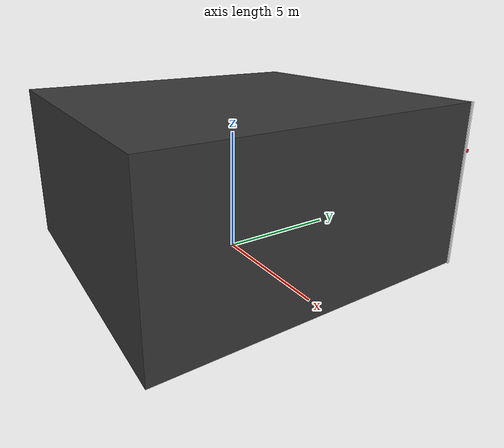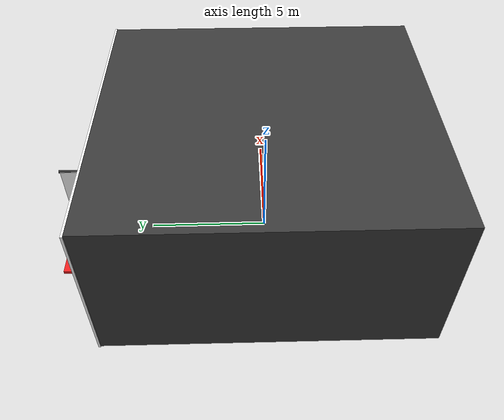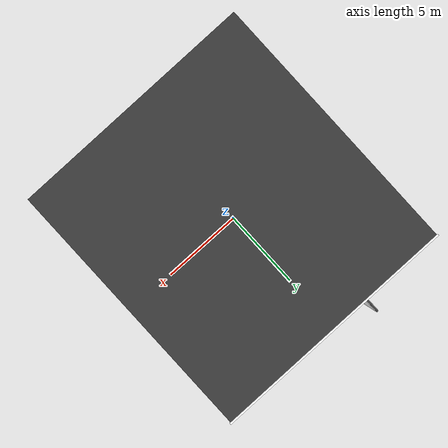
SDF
<?xml version="1.0" ?>
<sdf version="1.8">
  <model name="cheogajip_store">
    <static>true</static>
    <link name="cheogajip_link">

      <!-- Collision -->
      <collision name="cheogajip_main_col">
        <pose>0 0 3.25 0 0 0</pose>
        <geometry>
          <box><size>12.0 13.0 6.5</size></box>
        </geometry>
      </collision>

      <!-- Main Building Body (Dark textured stone/paint) -->
      <visual name="cheogajip_body_vis">
        <pose>0 0 3.25 0 0 0</pose>
        <geometry>
          <box><size>11.9 12.9 6.48</size></box>
        </geometry>
        <material>
          <ambient>0.18 0.18 0.18 1</ambient>
          <diffuse>0.22 0.22 0.22 1</diffuse>
          <pbr>
            <metal>
              <roughness>0.5</roughness>
              <metalness>0.1</metalness>
            </metal>
          </pbr>
        </material>
      </visual>

      <!-- Front Photo-Real Facade (X: 12m, Z: 6.5m) -->
      <visual name="cheogajip_facade_vis">
        <pose>0 6.46 3.25 0 0 0</pose>
        <geometry>
          <box><size>12.0 0.08 6.5</size></box>
        </geometry>
        <material>
          <diffuse>1 1 1 1</diffuse>
          <pbr>
            <metal>
              <albedo_map>model://cheogajip_store/materials/textures/cheogajip_facade.png</albedo_map>
              <roughness>0.35</roughness>
              <metalness>0.1</metalness>
            </metal>
          </pbr>
        </material>
      </visual>

      <!-- Red Awning Accent Trim -->
      <visual name="cheogajip_red_awning">
        <pose>0 6.6 4.6 0 0 0</pose>
        <geometry>
          <box><size>11.8 0.4 0.12</size></box>
        </geometry>
        <material>
          <ambient>0.85 0.1 0.1 1</ambient>
          <diffuse>0.92 0.12 0.12 1</diffuse>
        </material>
      </visual>

      <!-- Protruding Hanging Sign (起家雞側懸招牌) -->
      <visual name="cheogajip_sign_arm">
        <pose>-2.0 7.0 5.4 0 0 0</pose>
        <geometry>
          <box><size>0.08 1.2 0.08</size></box>
        </geometry>
        <material>
          <ambient>0.2 0.2 0.2 1</ambient>
          <diffuse>0.25 0.25 0.25 1</diffuse>
        </material>
      </visual>
      <visual name="cheogajip_protruding_sign">
        <pose>-2.0 7.0 4.6 0 0 0</pose>
        <geometry>
          <box><size>0.12 1.1 1.6</size></box>
        </geometry>
        <material>
          <diffuse>1 1 1 1</diffuse>
          <pbr>
            <metal>
              <albedo_map>model://cheogajip_store/materials/textures/cheogajip_protruding_sign.png</albedo_map>
              <roughness>0.3</roughness>
              <metalness>0.1</metalness>
            </metal>
          </pbr>
        </material>
      </visual>

    </link>
  </model>
</sdf>
